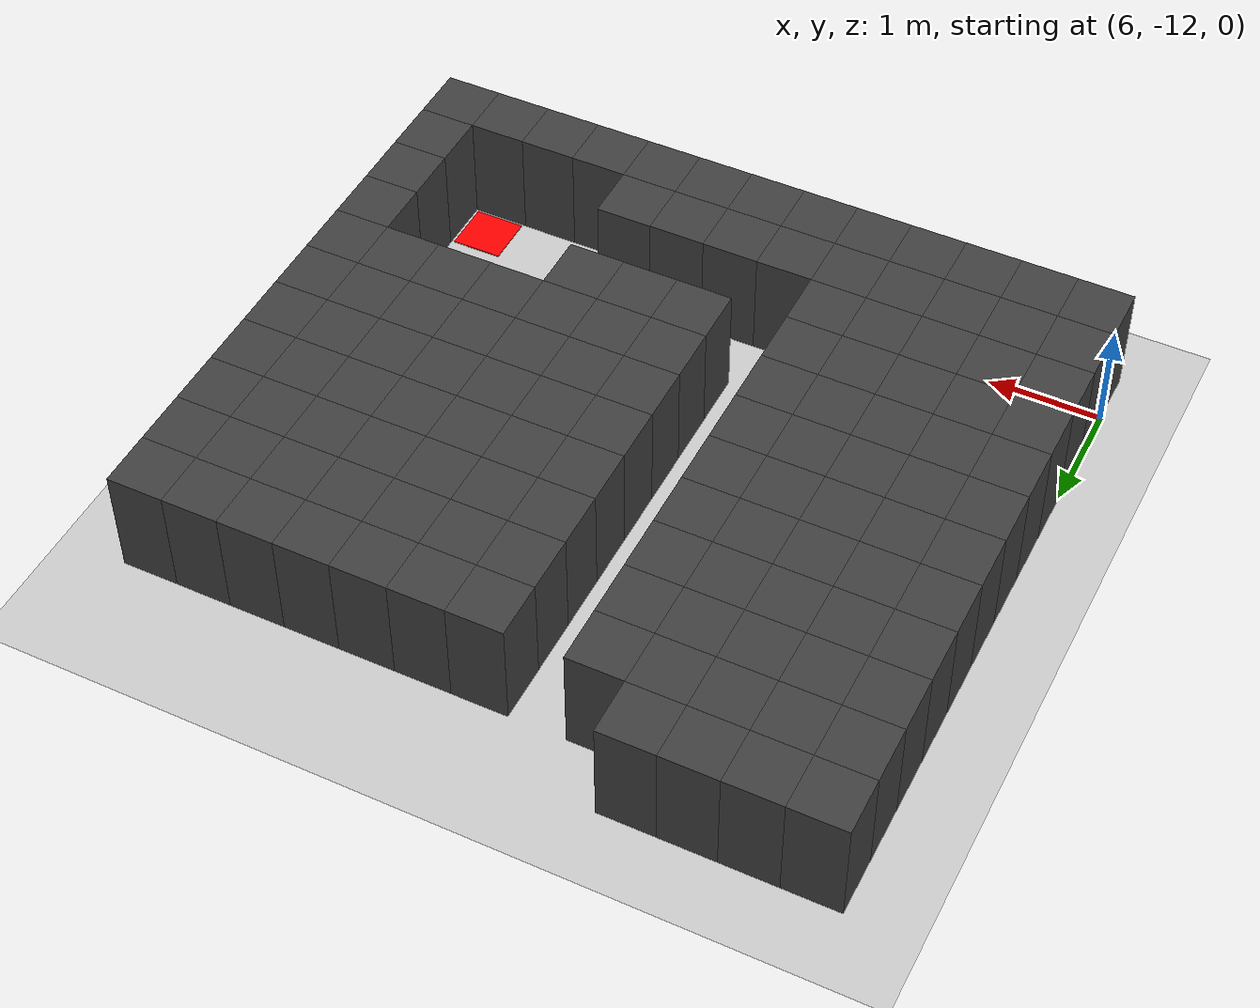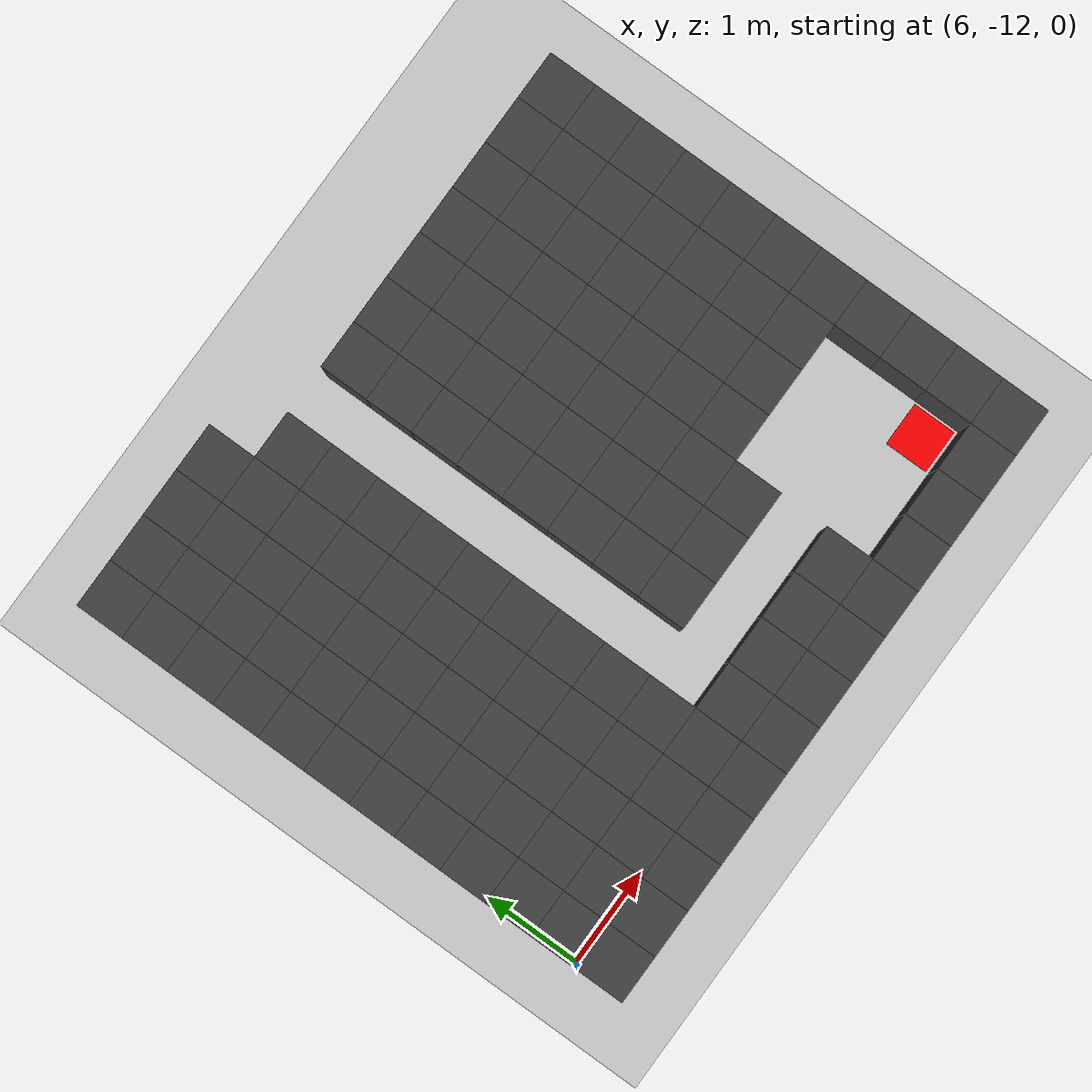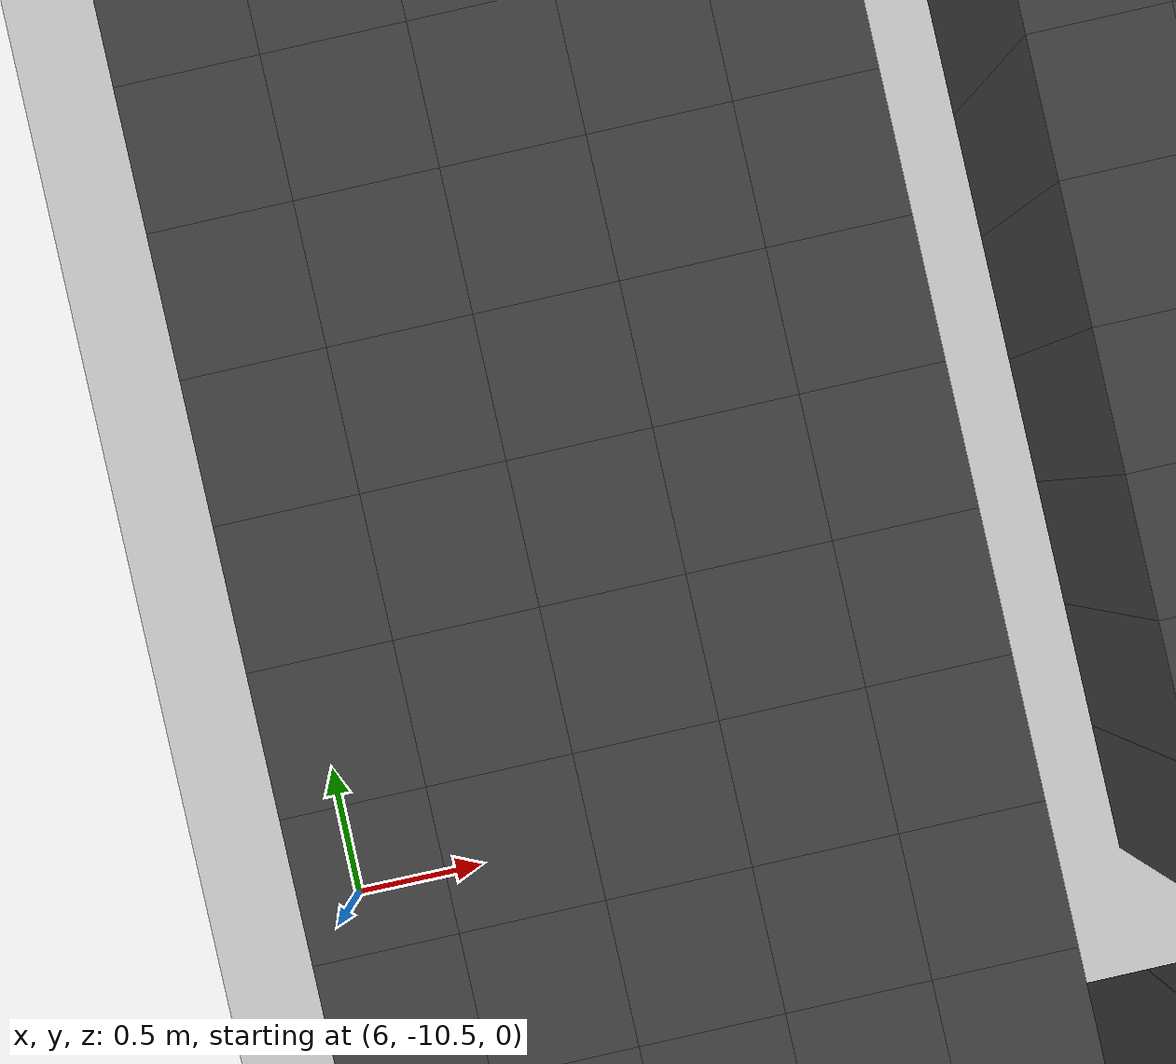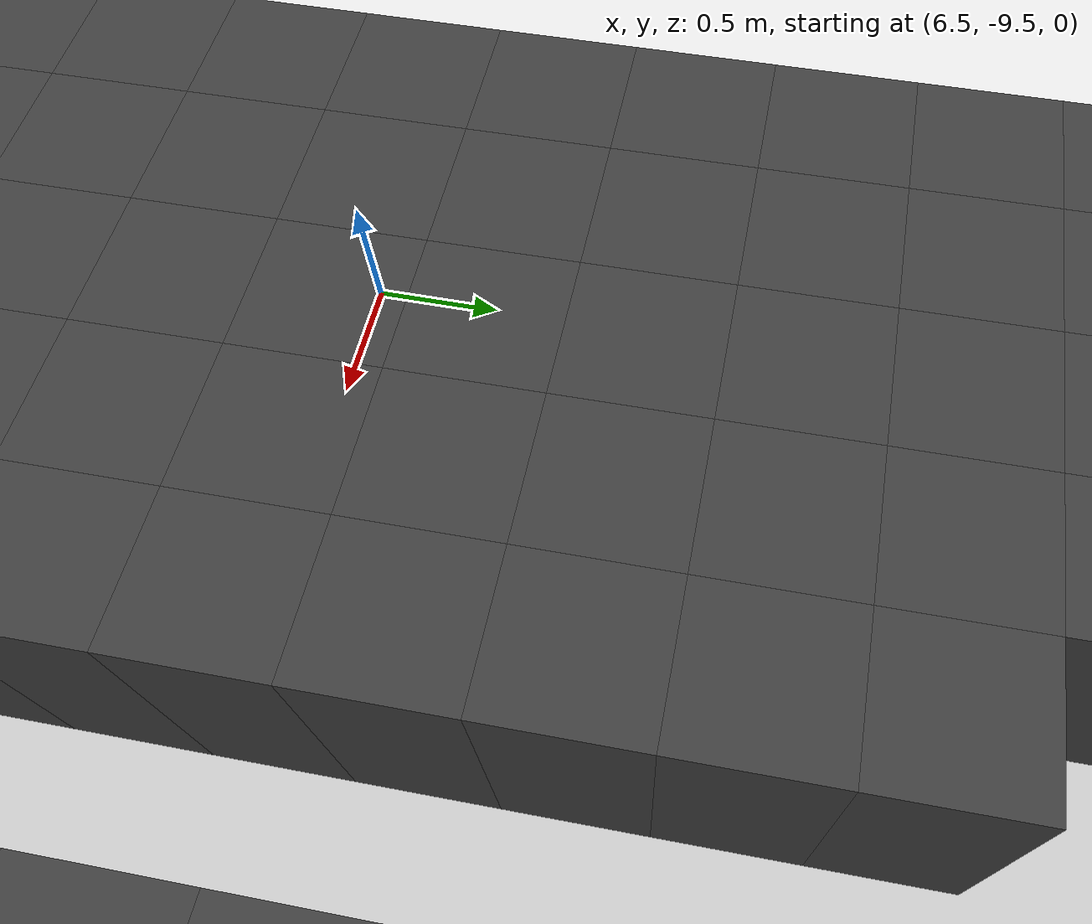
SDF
<sdf version="1.7">
 <world name="map_11672">
  <model name="ground_plane">
   <static>true</static>
   <link name="link">
    <collision name="collision">
     <geometry><plane><normal>0 0 1</normal><size>200 200</size></plane></geometry>
    </collision>
    <visual name="visual">
     <geometry><plane><normal>0 0 1</normal><size>200 200</size></plane></geometry>
     <material><ambient>0.8 0.8 0.8 1</ambient><diffuse>0.8 0.8 0.8 1</diffuse></material>
    </visual>
   </link>
  </model>
  <model name="maze_environment">
   <static>true</static>
   <link name="wall_1616">
    <pose>6.250 -6.750 0.500 0 0 0</pose>
    <collision name="col"><geometry><box><size>0.5 0.5 1.0</size></box></geometry></collision>
    <visual name="vis">
     <geometry><box><size>0.5 0.5 1.0</size></box></geometry>
     <material><ambient>0.15 0.15 0.15 1</ambient><diffuse>0.25 0.25 0.25 1</diffuse></material>
    </visual>
   </link>
   <link name="wall_1617">
    <pose>6.750 -6.750 0.500 0 0 0</pose>
    <collision name="col"><geometry><box><size>0.5 0.5 1.0</size></box></geometry></collision>
    <visual name="vis">
     <geometry><box><size>0.5 0.5 1.0</size></box></geometry>
     <material><ambient>0.15 0.15 0.15 1</ambient><diffuse>0.25 0.25 0.25 1</diffuse></material>
    </visual>
   </link>
   <link name="wall_1618">
    <pose>7.250 -6.750 0.500 0 0 0</pose>
    <collision name="col"><geometry><box><size>0.5 0.5 1.0</size></box></geometry></collision>
    <visual name="vis">
     <geometry><box><size>0.5 0.5 1.0</size></box></geometry>
     <material><ambient>0.15 0.15 0.15 1</ambient><diffuse>0.25 0.25 0.25 1</diffuse></material>
    </visual>
   </link>
   <link name="wall_1619">
    <pose>7.750 -6.750 0.500 0 0 0</pose>
    <collision name="col"><geometry><box><size>0.5 0.5 1.0</size></box></geometry></collision>
    <visual name="vis">
     <geometry><box><size>0.5 0.5 1.0</size></box></geometry>
     <material><ambient>0.15 0.15 0.15 1</ambient><diffuse>0.25 0.25 0.25 1</diffuse></material>
    </visual>
   </link>
   <link name="wall_1665">
    <pose>6.250 -7.250 0.500 0 0 0</pose>
    <collision name="col"><geometry><box><size>0.5 0.5 1.0</size></box></geometry></collision>
    <visual name="vis">
     <geometry><box><size>0.5 0.5 1.0</size></box></geometry>
     <material><ambient>0.15 0.15 0.15 1</ambient><diffuse>0.25 0.25 0.25 1</diffuse></material>
    </visual>
   </link>
   <link name="wall_1666">
    <pose>6.750 -7.250 0.500 0 0 0</pose>
    <collision name="col"><geometry><box><size>0.5 0.5 1.0</size></box></geometry></collision>
    <visual name="vis">
     <geometry><box><size>0.5 0.5 1.0</size></box></geometry>
     <material><ambient>0.15 0.15 0.15 1</ambient><diffuse>0.25 0.25 0.25 1</diffuse></material>
    </visual>
   </link>
   <link name="wall_1667">
    <pose>7.250 -7.250 0.500 0 0 0</pose>
    <collision name="col"><geometry><box><size>0.5 0.5 1.0</size></box></geometry></collision>
    <visual name="vis">
     <geometry><box><size>0.5 0.5 1.0</size></box></geometry>
     <material><ambient>0.15 0.15 0.15 1</ambient><diffuse>0.25 0.25 0.25 1</diffuse></material>
    </visual>
   </link>
   <link name="wall_1668">
    <pose>7.750 -7.250 0.500 0 0 0</pose>
    <collision name="col"><geometry><box><size>0.5 0.5 1.0</size></box></geometry></collision>
    <visual name="vis">
     <geometry><box><size>0.5 0.5 1.0</size></box></geometry>
     <material><ambient>0.15 0.15 0.15 1</ambient><diffuse>0.25 0.25 0.25 1</diffuse></material>
    </visual>
   </link>
   <link name="wall_1669">
    <pose>8.250 -7.250 0.500 0 0 0</pose>
    <collision name="col"><geometry><box><size>0.5 0.5 1.0</size></box></geometry></collision>
    <visual name="vis">
     <geometry><box><size>0.5 0.5 1.0</size></box></geometry>
     <material><ambient>0.15 0.15 0.15 1</ambient><diffuse>0.25 0.25 0.25 1</diffuse></material>
    </visual>
   </link>
   <link name="wall_1670">
    <pose>9.250 -7.250 0.500 0 0 0</pose>
    <collision name="col"><geometry><box><size>0.5 0.5 1.0</size></box></geometry></collision>
    <visual name="vis">
     <geometry><box><size>0.5 0.5 1.0</size></box></geometry>
     <material><ambient>0.15 0.15 0.15 1</ambient><diffuse>0.25 0.25 0.25 1</diffuse></material>
    </visual>
   </link>
   <link name="wall_1671">
    <pose>9.750 -7.250 0.500 0 0 0</pose>
    <collision name="col"><geometry><box><size>0.5 0.5 1.0</size></box></geometry></collision>
    <visual name="vis">
     <geometry><box><size>0.5 0.5 1.0</size></box></geometry>
     <material><ambient>0.15 0.15 0.15 1</ambient><diffuse>0.25 0.25 0.25 1</diffuse></material>
    </visual>
   </link>
   <link name="wall_1672">
    <pose>10.250 -7.250 0.500 0 0 0</pose>
    <collision name="col"><geometry><box><size>0.5 0.5 1.0</size></box></geometry></collision>
    <visual name="vis">
     <geometry><box><size>0.5 0.5 1.0</size></box></geometry>
     <material><ambient>0.15 0.15 0.15 1</ambient><diffuse>0.25 0.25 0.25 1</diffuse></material>
    </visual>
   </link>
   <link name="wall_1673">
    <pose>10.750 -7.250 0.500 0 0 0</pose>
    <collision name="col"><geometry><box><size>0.5 0.5 1.0</size></box></geometry></collision>
    <visual name="vis">
     <geometry><box><size>0.5 0.5 1.0</size></box></geometry>
     <material><ambient>0.15 0.15 0.15 1</ambient><diffuse>0.25 0.25 0.25 1</diffuse></material>
    </visual>
   </link>
   <link name="wall_1674">
    <pose>11.250 -7.250 0.500 0 0 0</pose>
    <collision name="col"><geometry><box><size>0.5 0.5 1.0</size></box></geometry></collision>
    <visual name="vis">
     <geometry><box><size>0.5 0.5 1.0</size></box></geometry>
     <material><ambient>0.15 0.15 0.15 1</ambient><diffuse>0.25 0.25 0.25 1</diffuse></material>
    </visual>
   </link>
   <link name="wall_1675">
    <pose>11.750 -7.250 0.500 0 0 0</pose>
    <collision name="col"><geometry><box><size>0.5 0.5 1.0</size></box></geometry></collision>
    <visual name="vis">
     <geometry><box><size>0.5 0.5 1.0</size></box></geometry>
     <material><ambient>0.15 0.15 0.15 1</ambient><diffuse>0.25 0.25 0.25 1</diffuse></material>
    </visual>
   </link>
   <link name="wall_1676">
    <pose>12.250 -7.250 0.500 0 0 0</pose>
    <collision name="col"><geometry><box><size>0.5 0.5 1.0</size></box></geometry></collision>
    <visual name="vis">
     <geometry><box><size>0.5 0.5 1.0</size></box></geometry>
     <material><ambient>0.15 0.15 0.15 1</ambient><diffuse>0.25 0.25 0.25 1</diffuse></material>
    </visual>
   </link>
   <link name="wall_1714">
    <pose>6.250 -7.750 0.500 0 0 0</pose>
    <collision name="col"><geometry><box><size>0.5 0.5 1.0</size></box></geometry></collision>
    <visual name="vis">
     <geometry><box><size>0.5 0.5 1.0</size></box></geometry>
     <material><ambient>0.15 0.15 0.15 1</ambient><diffuse>0.25 0.25 0.25 1</diffuse></material>
    </visual>
   </link>
   <link name="wall_1715">
    <pose>6.750 -7.750 0.500 0 0 0</pose>
    <collision name="col"><geometry><box><size>0.5 0.5 1.0</size></box></geometry></collision>
    <visual name="vis">
     <geometry><box><size>0.5 0.5 1.0</size></box></geometry>
     <material><ambient>0.15 0.15 0.15 1</ambient><diffuse>0.25 0.25 0.25 1</diffuse></material>
    </visual>
   </link>
   <link name="wall_1716">
    <pose>7.250 -7.750 0.500 0 0 0</pose>
    <collision name="col"><geometry><box><size>0.5 0.5 1.0</size></box></geometry></collision>
    <visual name="vis">
     <geometry><box><size>0.5 0.5 1.0</size></box></geometry>
     <material><ambient>0.15 0.15 0.15 1</ambient><diffuse>0.25 0.25 0.25 1</diffuse></material>
    </visual>
   </link>
   <link name="wall_1717">
    <pose>7.750 -7.750 0.500 0 0 0</pose>
    <collision name="col"><geometry><box><size>0.5 0.5 1.0</size></box></geometry></collision>
    <visual name="vis">
     <geometry><box><size>0.5 0.5 1.0</size></box></geometry>
     <material><ambient>0.15 0.15 0.15 1</ambient><diffuse>0.25 0.25 0.25 1</diffuse></material>
    </visual>
   </link>
   <link name="wall_1718">
    <pose>8.250 -7.750 0.500 0 0 0</pose>
    <collision name="col"><geometry><box><size>0.5 0.5 1.0</size></box></geometry></collision>
    <visual name="vis">
     <geometry><box><size>0.5 0.5 1.0</size></box></geometry>
     <material><ambient>0.15 0.15 0.15 1</ambient><diffuse>0.25 0.25 0.25 1</diffuse></material>
    </visual>
   </link>
   <link name="wall_1719">
    <pose>9.250 -7.750 0.500 0 0 0</pose>
    <collision name="col"><geometry><box><size>0.5 0.5 1.0</size></box></geometry></collision>
    <visual name="vis">
     <geometry><box><size>0.5 0.5 1.0</size></box></geometry>
     <material><ambient>0.15 0.15 0.15 1</ambient><diffuse>0.25 0.25 0.25 1</diffuse></material>
    </visual>
   </link>
   <link name="wall_1720">
    <pose>9.750 -7.750 0.500 0 0 0</pose>
    <collision name="col"><geometry><box><size>0.5 0.5 1.0</size></box></geometry></collision>
    <visual name="vis">
     <geometry><box><size>0.5 0.5 1.0</size></box></geometry>
     <material><ambient>0.15 0.15 0.15 1</ambient><diffuse>0.25 0.25 0.25 1</diffuse></material>
    </visual>
   </link>
   <link name="wall_1721">
    <pose>10.250 -7.750 0.500 0 0 0</pose>
    <collision name="col"><geometry><box><size>0.5 0.5 1.0</size></box></geometry></collision>
    <visual name="vis">
     <geometry><box><size>0.5 0.5 1.0</size></box></geometry>
     <material><ambient>0.15 0.15 0.15 1</ambient><diffuse>0.25 0.25 0.25 1</diffuse></material>
    </visual>
   </link>
   <link name="wall_1722">
    <pose>10.750 -7.750 0.500 0 0 0</pose>
    <collision name="col"><geometry><box><size>0.5 0.5 1.0</size></box></geometry></collision>
    <visual name="vis">
     <geometry><box><size>0.5 0.5 1.0</size></box></geometry>
     <material><ambient>0.15 0.15 0.15 1</ambient><diffuse>0.25 0.25 0.25 1</diffuse></material>
    </visual>
   </link>
   <link name="wall_1723">
    <pose>11.250 -7.750 0.500 0 0 0</pose>
    <collision name="col"><geometry><box><size>0.5 0.5 1.0</size></box></geometry></collision>
    <visual name="vis">
     <geometry><box><size>0.5 0.5 1.0</size></box></geometry>
     <material><ambient>0.15 0.15 0.15 1</ambient><diffuse>0.25 0.25 0.25 1</diffuse></material>
    </visual>
   </link>
   <link name="wall_1724">
    <pose>11.750 -7.750 0.500 0 0 0</pose>
    <collision name="col"><geometry><box><size>0.5 0.5 1.0</size></box></geometry></collision>
    <visual name="vis">
     <geometry><box><size>0.5 0.5 1.0</size></box></geometry>
     <material><ambient>0.15 0.15 0.15 1</ambient><diffuse>0.25 0.25 0.25 1</diffuse></material>
    </visual>
   </link>
   <link name="wall_1725">
    <pose>12.250 -7.750 0.500 0 0 0</pose>
    <collision name="col"><geometry><box><size>0.5 0.5 1.0</size></box></geometry></collision>
    <visual name="vis">
     <geometry><box><size>0.5 0.5 1.0</size></box></geometry>
     <material><ambient>0.15 0.15 0.15 1</ambient><diffuse>0.25 0.25 0.25 1</diffuse></material>
    </visual>
   </link>
   <link name="wall_1763">
    <pose>6.250 -8.250 0.500 0 0 0</pose>
    <collision name="col"><geometry><box><size>0.5 0.5 1.0</size></box></geometry></collision>
    <visual name="vis">
     <geometry><box><size>0.5 0.5 1.0</size></box></geometry>
     <material><ambient>0.15 0.15 0.15 1</ambient><diffuse>0.25 0.25 0.25 1</diffuse></material>
    </visual>
   </link>
   <link name="wall_1764">
    <pose>6.750 -8.250 0.500 0 0 0</pose>
    <collision name="col"><geometry><box><size>0.5 0.5 1.0</size></box></geometry></collision>
    <visual name="vis">
     <geometry><box><size>0.5 0.5 1.0</size></box></geometry>
     <material><ambient>0.15 0.15 0.15 1</ambient><diffuse>0.25 0.25 0.25 1</diffuse></material>
    </visual>
   </link>
   <link name="wall_1765">
    <pose>7.250 -8.250 0.500 0 0 0</pose>
    <collision name="col"><geometry><box><size>0.5 0.5 1.0</size></box></geometry></collision>
    <visual name="vis">
     <geometry><box><size>0.5 0.5 1.0</size></box></geometry>
     <material><ambient>0.15 0.15 0.15 1</ambient><diffuse>0.25 0.25 0.25 1</diffuse></material>
    </visual>
   </link>
   <link name="wall_1766">
    <pose>7.750 -8.250 0.500 0 0 0</pose>
    <collision name="col"><geometry><box><size>0.5 0.5 1.0</size></box></geometry></collision>
    <visual name="vis">
     <geometry><box><size>0.5 0.5 1.0</size></box></geometry>
     <material><ambient>0.15 0.15 0.15 1</ambient><diffuse>0.25 0.25 0.25 1</diffuse></material>
    </visual>
   </link>
   <link name="wall_1767">
    <pose>8.250 -8.250 0.500 0 0 0</pose>
    <collision name="col"><geometry><box><size>0.5 0.5 1.0</size></box></geometry></collision>
    <visual name="vis">
     <geometry><box><size>0.5 0.5 1.0</size></box></geometry>
     <material><ambient>0.15 0.15 0.15 1</ambient><diffuse>0.25 0.25 0.25 1</diffuse></material>
    </visual>
   </link>
   <link name="wall_1768">
    <pose>9.250 -8.250 0.500 0 0 0</pose>
    <collision name="col"><geometry><box><size>0.5 0.5 1.0</size></box></geometry></collision>
    <visual name="vis">
     <geometry><box><size>0.5 0.5 1.0</size></box></geometry>
     <material><ambient>0.15 0.15 0.15 1</ambient><diffuse>0.25 0.25 0.25 1</diffuse></material>
    </visual>
   </link>
   <link name="wall_1769">
    <pose>9.750 -8.250 0.500 0 0 0</pose>
    <collision name="col"><geometry><box><size>0.5 0.5 1.0</size></box></geometry></collision>
    <visual name="vis">
     <geometry><box><size>0.5 0.5 1.0</size></box></geometry>
     <material><ambient>0.15 0.15 0.15 1</ambient><diffuse>0.25 0.25 0.25 1</diffuse></material>
    </visual>
   </link>
   <link name="wall_1770">
    <pose>10.250 -8.250 0.500 0 0 0</pose>
    <collision name="col"><geometry><box><size>0.5 0.5 1.0</size></box></geometry></collision>
    <visual name="vis">
     <geometry><box><size>0.5 0.5 1.0</size></box></geometry>
     <material><ambient>0.15 0.15 0.15 1</ambient><diffuse>0.25 0.25 0.25 1</diffuse></material>
    </visual>
   </link>
   <link name="wall_1771">
    <pose>10.750 -8.250 0.500 0 0 0</pose>
    <collision name="col"><geometry><box><size>0.5 0.5 1.0</size></box></geometry></collision>
    <visual name="vis">
     <geometry><box><size>0.5 0.5 1.0</size></box></geometry>
     <material><ambient>0.15 0.15 0.15 1</ambient><diffuse>0.25 0.25 0.25 1</diffuse></material>
    </visual>
   </link>
   <link name="wall_1772">
    <pose>11.250 -8.250 0.500 0 0 0</pose>
    <collision name="col"><geometry><box><size>0.5 0.5 1.0</size></box></geometry></collision>
    <visual name="vis">
     <geometry><box><size>0.5 0.5 1.0</size></box></geometry>
     <material><ambient>0.15 0.15 0.15 1</ambient><diffuse>0.25 0.25 0.25 1</diffuse></material>
    </visual>
   </link>
   <link name="wall_1773">
    <pose>11.750 -8.250 0.500 0 0 0</pose>
    <collision name="col"><geometry><box><size>0.5 0.5 1.0</size></box></geometry></collision>
    <visual name="vis">
     <geometry><box><size>0.5 0.5 1.0</size></box></geometry>
     <material><ambient>0.15 0.15 0.15 1</ambient><diffuse>0.25 0.25 0.25 1</diffuse></material>
    </visual>
   </link>
   <link name="wall_1774">
    <pose>12.250 -8.250 0.500 0 0 0</pose>
    <collision name="col"><geometry><box><size>0.5 0.5 1.0</size></box></geometry></collision>
    <visual name="vis">
     <geometry><box><size>0.5 0.5 1.0</size></box></geometry>
     <material><ambient>0.15 0.15 0.15 1</ambient><diffuse>0.25 0.25 0.25 1</diffuse></material>
    </visual>
   </link>
   <link name="wall_1812">
    <pose>6.250 -8.750 0.500 0 0 0</pose>
    <collision name="col"><geometry><box><size>0.5 0.5 1.0</size></box></geometry></collision>
    <visual name="vis">
     <geometry><box><size>0.5 0.5 1.0</size></box></geometry>
     <material><ambient>0.15 0.15 0.15 1</ambient><diffuse>0.25 0.25 0.25 1</diffuse></material>
    </visual>
   </link>
   <link name="wall_1813">
    <pose>6.750 -8.750 0.500 0 0 0</pose>
    <collision name="col"><geometry><box><size>0.5 0.5 1.0</size></box></geometry></collision>
    <visual name="vis">
     <geometry><box><size>0.5 0.5 1.0</size></box></geometry>
     <material><ambient>0.15 0.15 0.15 1</ambient><diffuse>0.25 0.25 0.25 1</diffuse></material>
    </visual>
   </link>
   <link name="wall_1814">
    <pose>7.250 -8.750 0.500 0 0 0</pose>
    <collision name="col"><geometry><box><size>0.5 0.5 1.0</size></box></geometry></collision>
    <visual name="vis">
     <geometry><box><size>0.5 0.5 1.0</size></box></geometry>
     <material><ambient>0.15 0.15 0.15 1</ambient><diffuse>0.25 0.25 0.25 1</diffuse></material>
    </visual>
   </link>
   <link name="wall_1815">
    <pose>7.750 -8.750 0.500 0 0 0</pose>
    <collision name="col"><geometry><box><size>0.5 0.5 1.0</size></box></geometry></collision>
    <visual name="vis">
     <geometry><box><size>0.5 0.5 1.0</size></box></geometry>
     <material><ambient>0.15 0.15 0.15 1</ambient><diffuse>0.25 0.25 0.25 1</diffuse></material>
    </visual>
   </link>
   <link name="wall_1816">
    <pose>8.250 -8.750 0.500 0 0 0</pose>
    <collision name="col"><geometry><box><size>0.5 0.5 1.0</size></box></geometry></collision>
    <visual name="vis">
     <geometry><box><size>0.5 0.5 1.0</size></box></geometry>
     <material><ambient>0.15 0.15 0.15 1</ambient><diffuse>0.25 0.25 0.25 1</diffuse></material>
    </visual>
   </link>
   <link name="wall_1817">
    <pose>9.250 -8.750 0.500 0 0 0</pose>
    <collision name="col"><geometry><box><size>0.5 0.5 1.0</size></box></geometry></collision>
    <visual name="vis">
     <geometry><box><size>0.5 0.5 1.0</size></box></geometry>
     <material><ambient>0.15 0.15 0.15 1</ambient><diffuse>0.25 0.25 0.25 1</diffuse></material>
    </visual>
   </link>
   <link name="wall_1818">
    <pose>9.750 -8.750 0.500 0 0 0</pose>
    <collision name="col"><geometry><box><size>0.5 0.5 1.0</size></box></geometry></collision>
    <visual name="vis">
     <geometry><box><size>0.5 0.5 1.0</size></box></geometry>
     <material><ambient>0.15 0.15 0.15 1</ambient><diffuse>0.25 0.25 0.25 1</diffuse></material>
    </visual>
   </link>
   <link name="wall_1819">
    <pose>10.250 -8.750 0.500 0 0 0</pose>
    <collision name="col"><geometry><box><size>0.5 0.5 1.0</size></box></geometry></collision>
    <visual name="vis">
     <geometry><box><size>0.5 0.5 1.0</size></box></geometry>
     <material><ambient>0.15 0.15 0.15 1</ambient><diffuse>0.25 0.25 0.25 1</diffuse></material>
    </visual>
   </link>
   <link name="wall_1820">
    <pose>10.750 -8.750 0.500 0 0 0</pose>
    <collision name="col"><geometry><box><size>0.5 0.5 1.0</size></box></geometry></collision>
    <visual name="vis">
     <geometry><box><size>0.5 0.5 1.0</size></box></geometry>
     <material><ambient>0.15 0.15 0.15 1</ambient><diffuse>0.25 0.25 0.25 1</diffuse></material>
    </visual>
   </link>
   <link name="wall_1821">
    <pose>11.250 -8.750 0.500 0 0 0</pose>
    <collision name="col"><geometry><box><size>0.5 0.5 1.0</size></box></geometry></collision>
    <visual name="vis">
     <geometry><box><size>0.5 0.5 1.0</size></box></geometry>
     <material><ambient>0.15 0.15 0.15 1</ambient><diffuse>0.25 0.25 0.25 1</diffuse></material>
    </visual>
   </link>
   <link name="wall_1822">
    <pose>11.750 -8.750 0.500 0 0 0</pose>
    <collision name="col"><geometry><box><size>0.5 0.5 1.0</size></box></geometry></collision>
    <visual name="vis">
     <geometry><box><size>0.5 0.5 1.0</size></box></geometry>
     <material><ambient>0.15 0.15 0.15 1</ambient><diffuse>0.25 0.25 0.25 1</diffuse></material>
    </visual>
   </link>
   <link name="wall_1823">
    <pose>12.250 -8.750 0.500 0 0 0</pose>
    <collision name="col"><geometry><box><size>0.5 0.5 1.0</size></box></geometry></collision>
    <visual name="vis">
     <geometry><box><size>0.5 0.5 1.0</size></box></geometry>
     <material><ambient>0.15 0.15 0.15 1</ambient><diffuse>0.25 0.25 0.25 1</diffuse></material>
    </visual>
   </link>
   <link name="wall_1861">
    <pose>6.250 -9.250 0.500 0 0 0</pose>
    <collision name="col"><geometry><box><size>0.5 0.5 1.0</size></box></geometry></collision>
    <visual name="vis">
     <geometry><box><size>0.5 0.5 1.0</size></box></geometry>
     <material><ambient>0.15 0.15 0.15 1</ambient><diffuse>0.25 0.25 0.25 1</diffuse></material>
    </visual>
   </link>
   <link name="wall_1862">
    <pose>6.750 -9.250 0.500 0 0 0</pose>
    <collision name="col"><geometry><box><size>0.5 0.5 1.0</size></box></geometry></collision>
    <visual name="vis">
     <geometry><box><size>0.5 0.5 1.0</size></box></geometry>
     <material><ambient>0.15 0.15 0.15 1</ambient><diffuse>0.25 0.25 0.25 1</diffuse></material>
    </visual>
   </link>
   <link name="wall_1863">
    <pose>7.250 -9.250 0.500 0 0 0</pose>
    <collision name="col"><geometry><box><size>0.5 0.5 1.0</size></box></geometry></collision>
    <visual name="vis">
     <geometry><box><size>0.5 0.5 1.0</size></box></geometry>
     <material><ambient>0.15 0.15 0.15 1</ambient><diffuse>0.25 0.25 0.25 1</diffuse></material>
    </visual>
   </link>
   <link name="wall_1864">
    <pose>7.750 -9.250 0.500 0 0 0</pose>
    <collision name="col"><geometry><box><size>0.5 0.5 1.0</size></box></geometry></collision>
    <visual name="vis">
     <geometry><box><size>0.5 0.5 1.0</size></box></geometry>
     <material><ambient>0.15 0.15 0.15 1</ambient><diffuse>0.25 0.25 0.25 1</diffuse></material>
    </visual>
   </link>
   <link name="wall_1865">
    <pose>8.250 -9.250 0.500 0 0 0</pose>
    <collision name="col"><geometry><box><size>0.5 0.5 1.0</size></box></geometry></collision>
    <visual name="vis">
     <geometry><box><size>0.5 0.5 1.0</size></box></geometry>
     <material><ambient>0.15 0.15 0.15 1</ambient><diffuse>0.25 0.25 0.25 1</diffuse></material>
    </visual>
   </link>
   <link name="wall_1866">
    <pose>9.250 -9.250 0.500 0 0 0</pose>
    <collision name="col"><geometry><box><size>0.5 0.5 1.0</size></box></geometry></collision>
    <visual name="vis">
     <geometry><box><size>0.5 0.5 1.0</size></box></geometry>
     <material><ambient>0.15 0.15 0.15 1</ambient><diffuse>0.25 0.25 0.25 1</diffuse></material>
    </visual>
   </link>
   <link name="wall_1867">
    <pose>9.750 -9.250 0.500 0 0 0</pose>
    <collision name="col"><geometry><box><size>0.5 0.5 1.0</size></box></geometry></collision>
    <visual name="vis">
     <geometry><box><size>0.5 0.5 1.0</size></box></geometry>
     <material><ambient>0.15 0.15 0.15 1</ambient><diffuse>0.25 0.25 0.25 1</diffuse></material>
    </visual>
   </link>
   <link name="wall_1868">
    <pose>10.250 -9.250 0.500 0 0 0</pose>
    <collision name="col"><geometry><box><size>0.5 0.5 1.0</size></box></geometry></collision>
    <visual name="vis">
     <geometry><box><size>0.5 0.5 1.0</size></box></geometry>
     <material><ambient>0.15 0.15 0.15 1</ambient><diffuse>0.25 0.25 0.25 1</diffuse></material>
    </visual>
   </link>
   <link name="wall_1869">
    <pose>10.750 -9.250 0.500 0 0 0</pose>
    <collision name="col"><geometry><box><size>0.5 0.5 1.0</size></box></geometry></collision>
    <visual name="vis">
     <geometry><box><size>0.5 0.5 1.0</size></box></geometry>
     <material><ambient>0.15 0.15 0.15 1</ambient><diffuse>0.25 0.25 0.25 1</diffuse></material>
    </visual>
   </link>
   <link name="wall_1870">
    <pose>11.250 -9.250 0.500 0 0 0</pose>
    <collision name="col"><geometry><box><size>0.5 0.5 1.0</size></box></geometry></collision>
    <visual name="vis">
     <geometry><box><size>0.5 0.5 1.0</size></box></geometry>
     <material><ambient>0.15 0.15 0.15 1</ambient><diffuse>0.25 0.25 0.25 1</diffuse></material>
    </visual>
   </link>
   <link name="wall_1871">
    <pose>11.750 -9.250 0.500 0 0 0</pose>
    <collision name="col"><geometry><box><size>0.5 0.5 1.0</size></box></geometry></collision>
    <visual name="vis">
     <geometry><box><size>0.5 0.5 1.0</size></box></geometry>
     <material><ambient>0.15 0.15 0.15 1</ambient><diffuse>0.25 0.25 0.25 1</diffuse></material>
    </visual>
   </link>
   <link name="wall_1872">
    <pose>12.250 -9.250 0.500 0 0 0</pose>
    <collision name="col"><geometry><box><size>0.5 0.5 1.0</size></box></geometry></collision>
    <visual name="vis">
     <geometry><box><size>0.5 0.5 1.0</size></box></geometry>
     <material><ambient>0.15 0.15 0.15 1</ambient><diffuse>0.25 0.25 0.25 1</diffuse></material>
    </visual>
   </link>
   <link name="wall_1910">
    <pose>6.250 -9.750 0.500 0 0 0</pose>
    <collision name="col"><geometry><box><size>0.5 0.5 1.0</size></box></geometry></collision>
    <visual name="vis">
     <geometry><box><size>0.5 0.5 1.0</size></box></geometry>
     <material><ambient>0.15 0.15 0.15 1</ambient><diffuse>0.25 0.25 0.25 1</diffuse></material>
    </visual>
   </link>
   <link name="wall_1911">
    <pose>6.750 -9.750 0.500 0 0 0</pose>
    <collision name="col"><geometry><box><size>0.5 0.5 1.0</size></box></geometry></collision>
    <visual name="vis">
     <geometry><box><size>0.5 0.5 1.0</size></box></geometry>
     <material><ambient>0.15 0.15 0.15 1</ambient><diffuse>0.25 0.25 0.25 1</diffuse></material>
    </visual>
   </link>
   <link name="wall_1912">
    <pose>7.250 -9.750 0.500 0 0 0</pose>
    <collision name="col"><geometry><box><size>0.5 0.5 1.0</size></box></geometry></collision>
    <visual name="vis">
     <geometry><box><size>0.5 0.5 1.0</size></box></geometry>
     <material><ambient>0.15 0.15 0.15 1</ambient><diffuse>0.25 0.25 0.25 1</diffuse></material>
    </visual>
   </link>
   <link name="wall_1913">
    <pose>7.750 -9.750 0.500 0 0 0</pose>
    <collision name="col"><geometry><box><size>0.5 0.5 1.0</size></box></geometry></collision>
    <visual name="vis">
     <geometry><box><size>0.5 0.5 1.0</size></box></geometry>
     <material><ambient>0.15 0.15 0.15 1</ambient><diffuse>0.25 0.25 0.25 1</diffuse></material>
    </visual>
   </link>
   <link name="wall_1914">
    <pose>8.250 -9.750 0.500 0 0 0</pose>
    <collision name="col"><geometry><box><size>0.5 0.5 1.0</size></box></geometry></collision>
    <visual name="vis">
     <geometry><box><size>0.5 0.5 1.0</size></box></geometry>
     <material><ambient>0.15 0.15 0.15 1</ambient><diffuse>0.25 0.25 0.25 1</diffuse></material>
    </visual>
   </link>
   <link name="wall_1915">
    <pose>9.250 -9.750 0.500 0 0 0</pose>
    <collision name="col"><geometry><box><size>0.5 0.5 1.0</size></box></geometry></collision>
    <visual name="vis">
     <geometry><box><size>0.5 0.5 1.0</size></box></geometry>
     <material><ambient>0.15 0.15 0.15 1</ambient><diffuse>0.25 0.25 0.25 1</diffuse></material>
    </visual>
   </link>
   <link name="wall_1916">
    <pose>9.750 -9.750 0.500 0 0 0</pose>
    <collision name="col"><geometry><box><size>0.5 0.5 1.0</size></box></geometry></collision>
    <visual name="vis">
     <geometry><box><size>0.5 0.5 1.0</size></box></geometry>
     <material><ambient>0.15 0.15 0.15 1</ambient><diffuse>0.25 0.25 0.25 1</diffuse></material>
    </visual>
   </link>
   <link name="wall_1917">
    <pose>10.250 -9.750 0.500 0 0 0</pose>
    <collision name="col"><geometry><box><size>0.5 0.5 1.0</size></box></geometry></collision>
    <visual name="vis">
     <geometry><box><size>0.5 0.5 1.0</size></box></geometry>
     <material><ambient>0.15 0.15 0.15 1</ambient><diffuse>0.25 0.25 0.25 1</diffuse></material>
    </visual>
   </link>
   <link name="wall_1918">
    <pose>10.750 -9.750 0.500 0 0 0</pose>
    <collision name="col"><geometry><box><size>0.5 0.5 1.0</size></box></geometry></collision>
    <visual name="vis">
     <geometry><box><size>0.5 0.5 1.0</size></box></geometry>
     <material><ambient>0.15 0.15 0.15 1</ambient><diffuse>0.25 0.25 0.25 1</diffuse></material>
    </visual>
   </link>
   <link name="wall_1919">
    <pose>11.250 -9.750 0.500 0 0 0</pose>
    <collision name="col"><geometry><box><size>0.5 0.5 1.0</size></box></geometry></collision>
    <visual name="vis">
     <geometry><box><size>0.5 0.5 1.0</size></box></geometry>
     <material><ambient>0.15 0.15 0.15 1</ambient><diffuse>0.25 0.25 0.25 1</diffuse></material>
    </visual>
   </link>
   <link name="wall_1920">
    <pose>11.750 -9.750 0.500 0 0 0</pose>
    <collision name="col"><geometry><box><size>0.5 0.5 1.0</size></box></geometry></collision>
    <visual name="vis">
     <geometry><box><size>0.5 0.5 1.0</size></box></geometry>
     <material><ambient>0.15 0.15 0.15 1</ambient><diffuse>0.25 0.25 0.25 1</diffuse></material>
    </visual>
   </link>
   <link name="wall_1921">
    <pose>12.250 -9.750 0.500 0 0 0</pose>
    <collision name="col"><geometry><box><size>0.5 0.5 1.0</size></box></geometry></collision>
    <visual name="vis">
     <geometry><box><size>0.5 0.5 1.0</size></box></geometry>
     <material><ambient>0.15 0.15 0.15 1</ambient><diffuse>0.25 0.25 0.25 1</diffuse></material>
    </visual>
   </link>
   <link name="wall_1959">
    <pose>6.250 -10.250 0.500 0 0 0</pose>
    <collision name="col"><geometry><box><size>0.5 0.5 1.0</size></box></geometry></collision>
    <visual name="vis">
     <geometry><box><size>0.5 0.5 1.0</size></box></geometry>
     <material><ambient>0.15 0.15 0.15 1</ambient><diffuse>0.25 0.25 0.25 1</diffuse></material>
    </visual>
   </link>
   <link name="wall_1960">
    <pose>6.750 -10.250 0.500 0 0 0</pose>
    <collision name="col"><geometry><box><size>0.5 0.5 1.0</size></box></geometry></collision>
    <visual name="vis">
     <geometry><box><size>0.5 0.5 1.0</size></box></geometry>
     <material><ambient>0.15 0.15 0.15 1</ambient><diffuse>0.25 0.25 0.25 1</diffuse></material>
    </visual>
   </link>
   <link name="wall_1961">
    <pose>7.250 -10.250 0.500 0 0 0</pose>
    <collision name="col"><geometry><box><size>0.5 0.5 1.0</size></box></geometry></collision>
    <visual name="vis">
     <geometry><box><size>0.5 0.5 1.0</size></box></geometry>
     <material><ambient>0.15 0.15 0.15 1</ambient><diffuse>0.25 0.25 0.25 1</diffuse></material>
    </visual>
   </link>
   <link name="wall_1962">
    <pose>7.750 -10.250 0.500 0 0 0</pose>
    <collision name="col"><geometry><box><size>0.5 0.5 1.0</size></box></geometry></collision>
    <visual name="vis">
     <geometry><box><size>0.5 0.5 1.0</size></box></geometry>
     <material><ambient>0.15 0.15 0.15 1</ambient><diffuse>0.25 0.25 0.25 1</diffuse></material>
    </visual>
   </link>
   <link name="wall_1963">
    <pose>8.250 -10.250 0.500 0 0 0</pose>
    <collision name="col"><geometry><box><size>0.5 0.5 1.0</size></box></geometry></collision>
    <visual name="vis">
     <geometry><box><size>0.5 0.5 1.0</size></box></geometry>
     <material><ambient>0.15 0.15 0.15 1</ambient><diffuse>0.25 0.25 0.25 1</diffuse></material>
    </visual>
   </link>
   <link name="wall_1964">
    <pose>9.250 -10.250 0.500 0 0 0</pose>
    <collision name="col"><geometry><box><size>0.5 0.5 1.0</size></box></geometry></collision>
    <visual name="vis">
     <geometry><box><size>0.5 0.5 1.0</size></box></geometry>
     <material><ambient>0.15 0.15 0.15 1</ambient><diffuse>0.25 0.25 0.25 1</diffuse></material>
    </visual>
   </link>
   <link name="wall_1965">
    <pose>9.750 -10.250 0.500 0 0 0</pose>
    <collision name="col"><geometry><box><size>0.5 0.5 1.0</size></box></geometry></collision>
    <visual name="vis">
     <geometry><box><size>0.5 0.5 1.0</size></box></geometry>
     <material><ambient>0.15 0.15 0.15 1</ambient><diffuse>0.25 0.25 0.25 1</diffuse></material>
    </visual>
   </link>
   <link name="wall_1966">
    <pose>10.250 -10.250 0.500 0 0 0</pose>
    <collision name="col"><geometry><box><size>0.5 0.5 1.0</size></box></geometry></collision>
    <visual name="vis">
     <geometry><box><size>0.5 0.5 1.0</size></box></geometry>
     <material><ambient>0.15 0.15 0.15 1</ambient><diffuse>0.25 0.25 0.25 1</diffuse></material>
    </visual>
   </link>
   <link name="wall_1967">
    <pose>10.750 -10.250 0.500 0 0 0</pose>
    <collision name="col"><geometry><box><size>0.5 0.5 1.0</size></box></geometry></collision>
    <visual name="vis">
     <geometry><box><size>0.5 0.5 1.0</size></box></geometry>
     <material><ambient>0.15 0.15 0.15 1</ambient><diffuse>0.25 0.25 0.25 1</diffuse></material>
    </visual>
   </link>
   <link name="wall_1968">
    <pose>11.250 -10.250 0.500 0 0 0</pose>
    <collision name="col"><geometry><box><size>0.5 0.5 1.0</size></box></geometry></collision>
    <visual name="vis">
     <geometry><box><size>0.5 0.5 1.0</size></box></geometry>
     <material><ambient>0.15 0.15 0.15 1</ambient><diffuse>0.25 0.25 0.25 1</diffuse></material>
    </visual>
   </link>
   <link name="wall_1969">
    <pose>11.750 -10.250 0.500 0 0 0</pose>
    <collision name="col"><geometry><box><size>0.5 0.5 1.0</size></box></geometry></collision>
    <visual name="vis">
     <geometry><box><size>0.5 0.5 1.0</size></box></geometry>
     <material><ambient>0.15 0.15 0.15 1</ambient><diffuse>0.25 0.25 0.25 1</diffuse></material>
    </visual>
   </link>
   <link name="wall_1970">
    <pose>12.250 -10.250 0.500 0 0 0</pose>
    <collision name="col"><geometry><box><size>0.5 0.5 1.0</size></box></geometry></collision>
    <visual name="vis">
     <geometry><box><size>0.5 0.5 1.0</size></box></geometry>
     <material><ambient>0.15 0.15 0.15 1</ambient><diffuse>0.25 0.25 0.25 1</diffuse></material>
    </visual>
   </link>
   <link name="wall_2008">
    <pose>6.250 -10.750 0.500 0 0 0</pose>
    <collision name="col"><geometry><box><size>0.5 0.5 1.0</size></box></geometry></collision>
    <visual name="vis">
     <geometry><box><size>0.5 0.5 1.0</size></box></geometry>
     <material><ambient>0.15 0.15 0.15 1</ambient><diffuse>0.25 0.25 0.25 1</diffuse></material>
    </visual>
   </link>
   <link name="wall_2009">
    <pose>6.750 -10.750 0.500 0 0 0</pose>
    <collision name="col"><geometry><box><size>0.5 0.5 1.0</size></box></geometry></collision>
    <visual name="vis">
     <geometry><box><size>0.5 0.5 1.0</size></box></geometry>
     <material><ambient>0.15 0.15 0.15 1</ambient><diffuse>0.25 0.25 0.25 1</diffuse></material>
    </visual>
   </link>
   <link name="wall_2010">
    <pose>7.250 -10.750 0.500 0 0 0</pose>
    <collision name="col"><geometry><box><size>0.5 0.5 1.0</size></box></geometry></collision>
    <visual name="vis">
     <geometry><box><size>0.5 0.5 1.0</size></box></geometry>
     <material><ambient>0.15 0.15 0.15 1</ambient><diffuse>0.25 0.25 0.25 1</diffuse></material>
    </visual>
   </link>
   <link name="wall_2011">
    <pose>7.750 -10.750 0.500 0 0 0</pose>
    <collision name="col"><geometry><box><size>0.5 0.5 1.0</size></box></geometry></collision>
    <visual name="vis">
     <geometry><box><size>0.5 0.5 1.0</size></box></geometry>
     <material><ambient>0.15 0.15 0.15 1</ambient><diffuse>0.25 0.25 0.25 1</diffuse></material>
    </visual>
   </link>
   <link name="wall_2012">
    <pose>8.250 -10.750 0.500 0 0 0</pose>
    <collision name="col"><geometry><box><size>0.5 0.5 1.0</size></box></geometry></collision>
    <visual name="vis">
     <geometry><box><size>0.5 0.5 1.0</size></box></geometry>
     <material><ambient>0.15 0.15 0.15 1</ambient><diffuse>0.25 0.25 0.25 1</diffuse></material>
    </visual>
   </link>
   <link name="wall_2013">
    <pose>9.250 -10.750 0.500 0 0 0</pose>
    <collision name="col"><geometry><box><size>0.5 0.5 1.0</size></box></geometry></collision>
    <visual name="vis">
     <geometry><box><size>0.5 0.5 1.0</size></box></geometry>
     <material><ambient>0.15 0.15 0.15 1</ambient><diffuse>0.25 0.25 0.25 1</diffuse></material>
    </visual>
   </link>
   <link name="wall_2014">
    <pose>9.750 -10.750 0.500 0 0 0</pose>
    <collision name="col"><geometry><box><size>0.5 0.5 1.0</size></box></geometry></collision>
    <visual name="vis">
     <geometry><box><size>0.5 0.5 1.0</size></box></geometry>
     <material><ambient>0.15 0.15 0.15 1</ambient><diffuse>0.25 0.25 0.25 1</diffuse></material>
    </visual>
   </link>
   <link name="wall_2015">
    <pose>10.250 -10.750 0.500 0 0 0</pose>
    <collision name="col"><geometry><box><size>0.5 0.5 1.0</size></box></geometry></collision>
    <visual name="vis">
     <geometry><box><size>0.5 0.5 1.0</size></box></geometry>
     <material><ambient>0.15 0.15 0.15 1</ambient><diffuse>0.25 0.25 0.25 1</diffuse></material>
    </visual>
   </link>
   <link name="wall_2016">
    <pose>12.250 -10.750 0.500 0 0 0</pose>
    <collision name="col"><geometry><box><size>0.5 0.5 1.0</size></box></geometry></collision>
    <visual name="vis">
     <geometry><box><size>0.5 0.5 1.0</size></box></geometry>
     <material><ambient>0.15 0.15 0.15 1</ambient><diffuse>0.25 0.25 0.25 1</diffuse></material>
    </visual>
   </link>
   <link name="wall_2054">
    <pose>6.250 -11.250 0.500 0 0 0</pose>
    <collision name="col"><geometry><box><size>0.5 0.5 1.0</size></box></geometry></collision>
    <visual name="vis">
     <geometry><box><size>0.5 0.5 1.0</size></box></geometry>
     <material><ambient>0.15 0.15 0.15 1</ambient><diffuse>0.25 0.25 0.25 1</diffuse></material>
    </visual>
   </link>
   <link name="wall_2055">
    <pose>6.750 -11.250 0.500 0 0 0</pose>
    <collision name="col"><geometry><box><size>0.5 0.5 1.0</size></box></geometry></collision>
    <visual name="vis">
     <geometry><box><size>0.5 0.5 1.0</size></box></geometry>
     <material><ambient>0.15 0.15 0.15 1</ambient><diffuse>0.25 0.25 0.25 1</diffuse></material>
    </visual>
   </link>
   <link name="wall_2056">
    <pose>7.250 -11.250 0.500 0 0 0</pose>
    <collision name="col"><geometry><box><size>0.5 0.5 1.0</size></box></geometry></collision>
    <visual name="vis">
     <geometry><box><size>0.5 0.5 1.0</size></box></geometry>
     <material><ambient>0.15 0.15 0.15 1</ambient><diffuse>0.25 0.25 0.25 1</diffuse></material>
    </visual>
   </link>
   <link name="wall_2057">
    <pose>7.750 -11.250 0.500 0 0 0</pose>
    <collision name="col"><geometry><box><size>0.5 0.5 1.0</size></box></geometry></collision>
    <visual name="vis">
     <geometry><box><size>0.5 0.5 1.0</size></box></geometry>
     <material><ambient>0.15 0.15 0.15 1</ambient><diffuse>0.25 0.25 0.25 1</diffuse></material>
    </visual>
   </link>
   <link name="wall_2058">
    <pose>8.250 -11.250 0.500 0 0 0</pose>
    <collision name="col"><geometry><box><size>0.5 0.5 1.0</size></box></geometry></collision>
    <visual name="vis">
     <geometry><box><size>0.5 0.5 1.0</size></box></geometry>
     <material><ambient>0.15 0.15 0.15 1</ambient><diffuse>0.25 0.25 0.25 1</diffuse></material>
    </visual>
   </link>
   <link name="wall_2059">
    <pose>12.250 -11.250 0.500 0 0 0</pose>
    <collision name="col"><geometry><box><size>0.5 0.5 1.0</size></box></geometry></collision>
    <visual name="vis">
     <geometry><box><size>0.5 0.5 1.0</size></box></geometry>
     <material><ambient>0.15 0.15 0.15 1</ambient><diffuse>0.25 0.25 0.25 1</diffuse></material>
    </visual>
   </link>
   <link name="wall_2097">
    <pose>6.250 -11.750 0.500 0 0 0</pose>
    <collision name="col"><geometry><box><size>0.5 0.5 1.0</size></box></geometry></collision>
    <visual name="vis">
     <geometry><box><size>0.5 0.5 1.0</size></box></geometry>
     <material><ambient>0.15 0.15 0.15 1</ambient><diffuse>0.25 0.25 0.25 1</diffuse></material>
    </visual>
   </link>
   <link name="wall_2098">
    <pose>6.750 -11.750 0.500 0 0 0</pose>
    <collision name="col"><geometry><box><size>0.5 0.5 1.0</size></box></geometry></collision>
    <visual name="vis">
     <geometry><box><size>0.5 0.5 1.0</size></box></geometry>
     <material><ambient>0.15 0.15 0.15 1</ambient><diffuse>0.25 0.25 0.25 1</diffuse></material>
    </visual>
   </link>
   <link name="wall_2099">
    <pose>7.250 -11.750 0.500 0 0 0</pose>
    <collision name="col"><geometry><box><size>0.5 0.5 1.0</size></box></geometry></collision>
    <visual name="vis">
     <geometry><box><size>0.5 0.5 1.0</size></box></geometry>
     <material><ambient>0.15 0.15 0.15 1</ambient><diffuse>0.25 0.25 0.25 1</diffuse></material>
    </visual>
   </link>
   <link name="wall_2100">
    <pose>7.750 -11.750 0.500 0 0 0</pose>
    <collision name="col"><geometry><box><size>0.5 0.5 1.0</size></box></geometry></collision>
    <visual name="vis">
     <geometry><box><size>0.5 0.5 1.0</size></box></geometry>
     <material><ambient>0.15 0.15 0.15 1</ambient><diffuse>0.25 0.25 0.25 1</diffuse></material>
    </visual>
   </link>
   <link name="wall_2101">
    <pose>8.250 -11.750 0.500 0 0 0</pose>
    <collision name="col"><geometry><box><size>0.5 0.5 1.0</size></box></geometry></collision>
    <visual name="vis">
     <geometry><box><size>0.5 0.5 1.0</size></box></geometry>
     <material><ambient>0.15 0.15 0.15 1</ambient><diffuse>0.25 0.25 0.25 1</diffuse></material>
    </visual>
   </link>
   <link name="wall_2102">
    <pose>8.750 -11.750 0.500 0 0 0</pose>
    <collision name="col"><geometry><box><size>0.5 0.5 1.0</size></box></geometry></collision>
    <visual name="vis">
     <geometry><box><size>0.5 0.5 1.0</size></box></geometry>
     <material><ambient>0.15 0.15 0.15 1</ambient><diffuse>0.25 0.25 0.25 1</diffuse></material>
    </visual>
   </link>
   <link name="wall_2103">
    <pose>9.250 -11.750 0.500 0 0 0</pose>
    <collision name="col"><geometry><box><size>0.5 0.5 1.0</size></box></geometry></collision>
    <visual name="vis">
     <geometry><box><size>0.5 0.5 1.0</size></box></geometry>
     <material><ambient>0.15 0.15 0.15 1</ambient><diffuse>0.25 0.25 0.25 1</diffuse></material>
    </visual>
   </link>
   <link name="wall_2104">
    <pose>9.750 -11.750 0.500 0 0 0</pose>
    <collision name="col"><geometry><box><size>0.5 0.5 1.0</size></box></geometry></collision>
    <visual name="vis">
     <geometry><box><size>0.5 0.5 1.0</size></box></geometry>
     <material><ambient>0.15 0.15 0.15 1</ambient><diffuse>0.25 0.25 0.25 1</diffuse></material>
    </visual>
   </link>
   <link name="wall_2105">
    <pose>10.250 -11.750 0.500 0 0 0</pose>
    <collision name="col"><geometry><box><size>0.5 0.5 1.0</size></box></geometry></collision>
    <visual name="vis">
     <geometry><box><size>0.5 0.5 1.0</size></box></geometry>
     <material><ambient>0.15 0.15 0.15 1</ambient><diffuse>0.25 0.25 0.25 1</diffuse></material>
    </visual>
   </link>
   <link name="wall_2106">
    <pose>12.250 -11.750 0.500 0 0 0</pose>
    <collision name="col"><geometry><box><size>0.5 0.5 1.0</size></box></geometry></collision>
    <visual name="vis">
     <geometry><box><size>0.5 0.5 1.0</size></box></geometry>
     <material><ambient>0.15 0.15 0.15 1</ambient><diffuse>0.25 0.25 0.25 1</diffuse></material>
    </visual>
   </link>
   <link name="wall_2144">
    <pose>6.250 -12.250 0.500 0 0 0</pose>
    <collision name="col"><geometry><box><size>0.5 0.5 1.0</size></box></geometry></collision>
    <visual name="vis">
     <geometry><box><size>0.5 0.5 1.0</size></box></geometry>
     <material><ambient>0.15 0.15 0.15 1</ambient><diffuse>0.25 0.25 0.25 1</diffuse></material>
    </visual>
   </link>
   <link name="wall_2145">
    <pose>6.750 -12.250 0.500 0 0 0</pose>
    <collision name="col"><geometry><box><size>0.5 0.5 1.0</size></box></geometry></collision>
    <visual name="vis">
     <geometry><box><size>0.5 0.5 1.0</size></box></geometry>
     <material><ambient>0.15 0.15 0.15 1</ambient><diffuse>0.25 0.25 0.25 1</diffuse></material>
    </visual>
   </link>
   <link name="wall_2146">
    <pose>7.250 -12.250 0.500 0 0 0</pose>
    <collision name="col"><geometry><box><size>0.5 0.5 1.0</size></box></geometry></collision>
    <visual name="vis">
     <geometry><box><size>0.5 0.5 1.0</size></box></geometry>
     <material><ambient>0.15 0.15 0.15 1</ambient><diffuse>0.25 0.25 0.25 1</diffuse></material>
    </visual>
   </link>
   <link name="wall_2147">
    <pose>7.750 -12.250 0.500 0 0 0</pose>
    <collision name="col"><geometry><box><size>0.5 0.5 1.0</size></box></geometry></collision>
    <visual name="vis">
     <geometry><box><size>0.5 0.5 1.0</size></box></geometry>
     <material><ambient>0.15 0.15 0.15 1</ambient><diffuse>0.25 0.25 0.25 1</diffuse></material>
    </visual>
   </link>
   <link name="wall_2148">
    <pose>8.250 -12.250 0.500 0 0 0</pose>
    <collision name="col"><geometry><box><size>0.5 0.5 1.0</size></box></geometry></collision>
    <visual name="vis">
     <geometry><box><size>0.5 0.5 1.0</size></box></geometry>
     <material><ambient>0.15 0.15 0.15 1</ambient><diffuse>0.25 0.25 0.25 1</diffuse></material>
    </visual>
   </link>
   <link name="wall_2149">
    <pose>8.750 -12.250 0.500 0 0 0</pose>
    <collision name="col"><geometry><box><size>0.5 0.5 1.0</size></box></geometry></collision>
    <visual name="vis">
     <geometry><box><size>0.5 0.5 1.0</size></box></geometry>
     <material><ambient>0.15 0.15 0.15 1</ambient><diffuse>0.25 0.25 0.25 1</diffuse></material>
    </visual>
   </link>
   <link name="wall_2150">
    <pose>9.250 -12.250 0.500 0 0 0</pose>
    <collision name="col"><geometry><box><size>0.5 0.5 1.0</size></box></geometry></collision>
    <visual name="vis">
     <geometry><box><size>0.5 0.5 1.0</size></box></geometry>
     <material><ambient>0.15 0.15 0.15 1</ambient><diffuse>0.25 0.25 0.25 1</diffuse></material>
    </visual>
   </link>
   <link name="wall_2151">
    <pose>9.750 -12.250 0.500 0 0 0</pose>
    <collision name="col"><geometry><box><size>0.5 0.5 1.0</size></box></geometry></collision>
    <visual name="vis">
     <geometry><box><size>0.5 0.5 1.0</size></box></geometry>
     <material><ambient>0.15 0.15 0.15 1</ambient><diffuse>0.25 0.25 0.25 1</diffuse></material>
    </visual>
   </link>
   <link name="wall_2152">
    <pose>10.250 -12.250 0.500 0 0 0</pose>
    <collision name="col"><geometry><box><size>0.5 0.5 1.0</size></box></geometry></collision>
    <visual name="vis">
     <geometry><box><size>0.5 0.5 1.0</size></box></geometry>
     <material><ambient>0.15 0.15 0.15 1</ambient><diffuse>0.25 0.25 0.25 1</diffuse></material>
    </visual>
   </link>
   <link name="wall_2153">
    <pose>10.750 -12.250 0.500 0 0 0</pose>
    <collision name="col"><geometry><box><size>0.5 0.5 1.0</size></box></geometry></collision>
    <visual name="vis">
     <geometry><box><size>0.5 0.5 1.0</size></box></geometry>
     <material><ambient>0.15 0.15 0.15 1</ambient><diffuse>0.25 0.25 0.25 1</diffuse></material>
    </visual>
   </link>
   <link name="wall_2154">
    <pose>11.250 -12.250 0.500 0 0 0</pose>
    <collision name="col"><geometry><box><size>0.5 0.5 1.0</size></box></geometry></collision>
    <visual name="vis">
     <geometry><box><size>0.5 0.5 1.0</size></box></geometry>
     <material><ambient>0.15 0.15 0.15 1</ambient><diffuse>0.25 0.25 0.25 1</diffuse></material>
    </visual>
   </link>
   <link name="wall_2155">
    <pose>11.750 -12.250 0.500 0 0 0</pose>
    <collision name="col"><geometry><box><size>0.5 0.5 1.0</size></box></geometry></collision>
    <visual name="vis">
     <geometry><box><size>0.5 0.5 1.0</size></box></geometry>
     <material><ambient>0.15 0.15 0.15 1</ambient><diffuse>0.25 0.25 0.25 1</diffuse></material>
    </visual>
   </link>
   <link name="wall_2156">
    <pose>12.250 -12.250 0.500 0 0 0</pose>
    <collision name="col"><geometry><box><size>0.5 0.5 1.0</size></box></geometry></collision>
    <visual name="vis">
     <geometry><box><size>0.5 0.5 1.0</size></box></geometry>
     <material><ambient>0.15 0.15 0.15 1</ambient><diffuse>0.25 0.25 0.25 1</diffuse></material>
    </visual>
   </link>
   <link name="goal_zone">
    <pose>11.750 -11.750 0.005 0 0 0</pose>
    <visual name="vis">
     <geometry><box><size>0.45 0.45 0.01</size></box></geometry>
     <material>
      <ambient>1.0 0.0 0.0 1</ambient>
      <diffuse>1.0 0.0 0.0 1</diffuse>
      <emissive>0.60 0.00 0.00 1</emissive>
     </material>
    </visual>
   </link>
  </model>
 </world>
</sdf>
